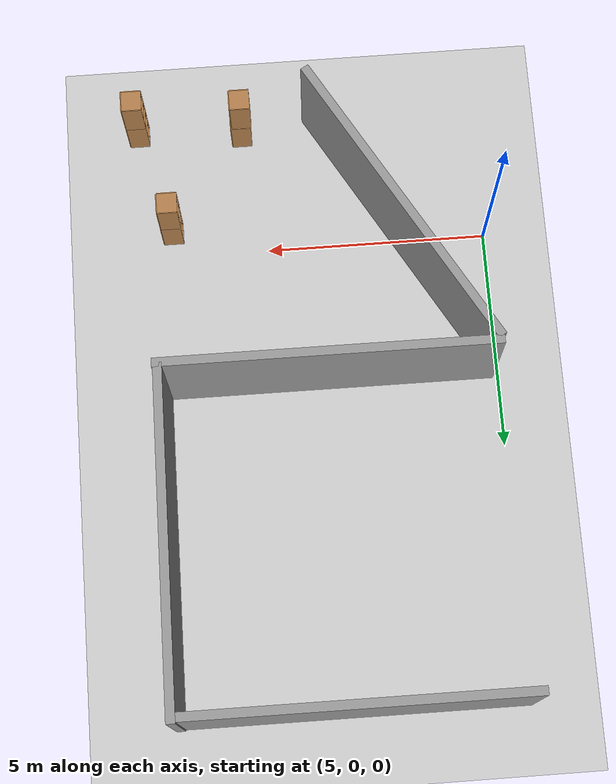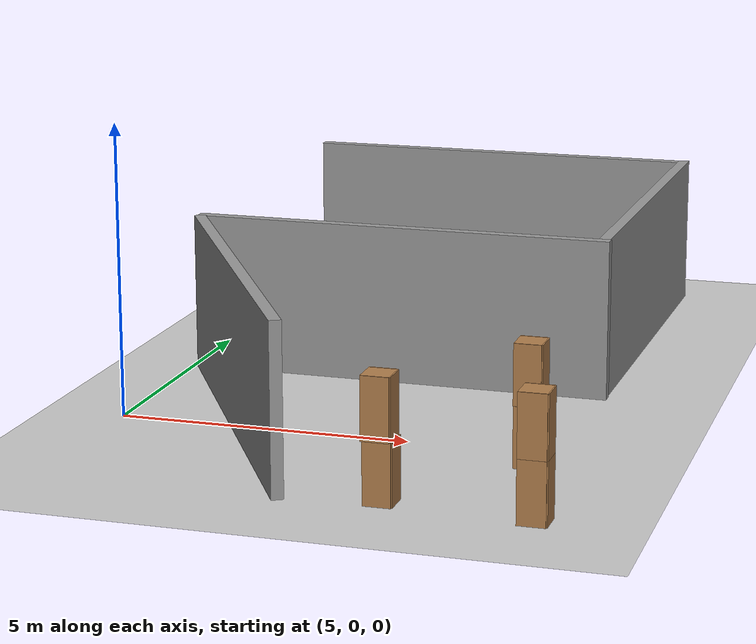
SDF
<sdf version="1.6">
 <world name="default">
  <light name="sun" type="directional">
   <cast_shadows>0</cast_shadows>
   <pose>0 0 10 0 -0 0</pose>
   <diffuse>0.8 0.8 0.8 1</diffuse>
   <specular>0.2 0.2 0.2 1</specular>
   <attenuation>
    <range>1000</range>
    <constant>0.9</constant>
    <linear>0.01</linear>
    <quadratic>0.001</quadratic>
   </attenuation>
   <direction>-0.5 0.1 -0.9</direction>
  </light>
  <model name="ground_plane">
   <static>1</static>
   <link name="link">
    <collision name="collision">
     <geometry><plane><normal>0 0 1</normal><size>200 200</size></plane></geometry>
     <surface><friction><ode><mu>100</mu><mu2>50</mu2></ode></friction></surface>
    </collision>
    <visual name="visual">
     <cast_shadows>0</cast_shadows>
     <geometry><plane><normal>0 0 1</normal><size>200 200</size></plane></geometry>
     <material>
      <script><uri>file://media/materials/scripts/gazebo.material</uri><name>Gazebo/Grey</name></script>
     </material>
    </visual>
   </link>
  </model>
  <physics name="default_physics" default="0" type="ode">
   <max_step_size>0.001</max_step_size>
   <real_time_factor>1</real_time_factor>
   <real_time_update_rate>1000</real_time_update_rate>
  </physics>
  <scene><ambient>0.4 0.4 0.4 1</ambient><background>0.7 0.7 0.7 1</background><shadows>0</shadows></scene>
  <spherical_coordinates>
   <surface_model>EARTH_WGS84</surface_model>
   <latitude_deg>0</latitude_deg>
   <longitude_deg>0</longitude_deg>
   <elevation>0</elevation>
   <heading_deg>0</heading_deg>
  </spherical_coordinates>
  <gravity>0 0 -9.8</gravity>
  <magnetic_field>6e-06 2.3e-05 -4.2e-05</magnetic_field>
  <atmosphere type="adiabatic"/>
  <model name="grey_wall">
   <static>1</static>
   <link name="link">
    <pose>0 0 1.4 0 -0 0</pose>
    <collision name="collision"><geometry><box><size>7.5 0.2 2.8</size></box></geometry></collision>
    <visual name="visual">
     <cast_shadows>0</cast_shadows>
     <geometry><box><size>7.5 0.2 2.8</size></box></geometry>
     <material>
      <script>
       <uri>model://grey_wall/materials/scripts</uri>
       <uri>model://grey_wall/materials/textures</uri>
       <name>vrc/grey_wall</name>
      </script>
     </material>
    </visual>
   </link>
   <pose>7.03756 -0.007814 0 0 0 -1.04529</pose>
  </model>
  <model name="grey_wall_clone_clone">
   <static>1</static>
   <link name="link">
    <pose>0 0 1.4 0 -0 0</pose>
    <collision name="collision"><geometry><box><size>7.5 0.2 2.8</size></box></geometry></collision>
    <visual name="visual">
     <cast_shadows>0</cast_shadows>
     <geometry><box><size>7.5 0.2 2.8</size></box></geometry>
     <material>
      <script>
       <uri>model://grey_wall/materials/scripts</uri>
       <uri>model://grey_wall/materials/textures</uri>
       <name>vrc/grey_wall</name>
      </script>
     </material>
    </visual>
   </link>
   <pose>8.86687 3.30384 0 0 0 -0.002717</pose>
  </model>
  <model name="grey_wall_clone_clone_clone_0">
   <static>1</static>
   <link name="link">
    <pose>0 0 1.4 0 -0 0</pose>
    <collision name="collision"><geometry><box><size>7.5 0.2 2.8</size></box></geometry></collision>
    <visual name="visual">
     <cast_shadows>0</cast_shadows>
     <geometry><box><size>7.5 0.2 2.8</size></box></geometry>
     <material>
      <script>
       <uri>model://grey_wall/materials/scripts</uri>
       <uri>model://grey_wall/materials/textures</uri>
       <name>vrc/grey_wall</name>
      </script>
     </material>
    </visual>
   </link>
   <pose>12.54 7.03843 0 0 0 -1.58223</pose>
  </model>
  <model name="grey_wall_clone_clone_clone_1">
   <static>1</static>
   <link name="link">
    <pose>0 0 1.4 0 -0 0</pose>
    <collision name="collision"><geometry><box><size>7.5 0.2 2.8</size></box></geometry></collision>
    <visual name="visual">
     <cast_shadows>0</cast_shadows>
     <geometry><box><size>7.5 0.2 2.8</size></box></geometry>
     <material>
      <script>
       <uri>model://grey_wall/materials/scripts</uri>
       <uri>model://grey_wall/materials/textures</uri>
       <name>vrc/grey_wall</name>
      </script>
     </material>
    </visual>
   </link>
   <pose>8.7532 10.6719 0 0 0 -0.002717</pose>
  </model>
  <model name="cabinet">
   <static>1</static>
   <link name="cabinet_bottom_plate">
    <inertial>
     <pose>0 0 -1 0 -0 0</pose>
     <inertia><ixx>2.05</ixx><ixy>0</ixy><ixz>0</ixz><iyy>2.05</iyy><iyz>0</iyz><izz>2.05</izz></inertia>
     <mass>25</mass>
    </inertial>
    <collision name="cabinet_bottom_plate_geom">
     <pose>0 0 0.01 0 -0 0</pose>
     <geometry><box><size>0.45 0.45 0.02</size></box></geometry>
    </collision>
    <visual name="cabinet_bottom_plate_geom_visual">
     <pose>0 0 0.01 0 -0 0</pose>
     <geometry><box><size>0.45 0.45 0.02</size></box></geometry>
     <material>
      <script><uri>file://media/materials/scripts/gazebo.material</uri><name>Gazebo/Wood</name></script>
     </material>
    </visual>
    <collision name="cabinet_bottom_plate_geom_cabinet_back_plate">
     <pose>0.235 0 0.51 0 -0 0</pose>
     <geometry><box><size>0.02 0.45 1.02</size></box></geometry>
    </collision>
    <visual name="cabinet_bottom_plate_geom_cabinet_back_plate_visual">
     <pose>0.235 0 0.51 0 -0 0</pose>
     <geometry><box><size>0.02 0.45 1.02</size></box></geometry>
     <material>
      <script><uri>file://media/materials/scripts/gazebo.material</uri><name>Gazebo/Wood</name></script>
     </material>
    </visual>
    <collision name="cabinet_bottom_plate_geom_cabinet_left_plate">
     <pose>0 0.235 0.51 0 -0 0</pose>
     <geometry><box><size>0.45 0.02 1.02</size></box></geometry>
    </collision>
    <visual name="cabinet_bottom_plate_geom_cabinet_left_plate_visual">
     <pose>0 0.235 0.51 0 -0 0</pose>
     <geometry><box><size>0.45 0.02 1.02</size></box></geometry>
     <material>
      <script><uri>file://media/materials/scripts/gazebo.material</uri><name>Gazebo/Wood</name></script>
     </material>
    </visual>
    <collision name="cabinet_bottom_plate_geom_cabinet_middle_plate">
     <pose>0 0 0.51 0 -0 0</pose>
     <geometry><box><size>0.45 0.45 0.02</size></box></geometry>
    </collision>
    <visual name="cabinet_bottom_plate_geom_cabinet_middle_plate_visual">
     <pose>0 0 0.51 0 -0 0</pose>
     <geometry><box><size>0.45 0.45 0.02</size></box></geometry>
     <material>
      <script><uri>file://media/materials/scripts/gazebo.material</uri><name>Gazebo/Wood</name></script>
     </material>
    </visual>
    <collision name="cabinet_bottom_plate_geom_cabinet_right_plate">
     <pose>0 -0.235 0.51 0 -0 0</pose>
     <geometry><box><size>0.45 0.02 1.02</size></box></geometry>
    </collision>
    <visual name="cabinet_bottom_plate_geom_cabinet_right_plate_visual">
     <pose>0 -0.235 0.51 0 -0 0</pose>
     <geometry><box><size>0.45 0.02 1.02</size></box></geometry>
     <material>
      <script><uri>file://media/materials/scripts/gazebo.material</uri><name>Gazebo/Wood</name></script>
     </material>
    </visual>
    <collision name="cabinet_bottom_plate_geom_cabinet_top_plate">
     <pose>0 0 1.01 0 -0 0</pose>
     <geometry><box><size>0.45 0.45 0.02</size></box></geometry>
    </collision>
    <visual name="cabinet_bottom_plate_geom_cabinet_top_plate_visual">
     <pose>0 0 1.01 0 -0 0</pose>
     <geometry><box><size>0.45 0.45 0.02</size></box></geometry>
     <material>
      <script><uri>file://media/materials/scripts/gazebo.material</uri><name>Gazebo/Wood</name></script>
     </material>
    </visual>
   </link>
   <pose>10.4431 -2.90484 0 0 -0 0</pose>
  </model>
  <model name="cabinet_clone">
   <static>1</static>
   <link name="cabinet_bottom_plate">
    <inertial>
     <pose>0 0 -1 0 -0 0</pose>
     <inertia><ixx>2.05</ixx><ixy>0</ixy><ixz>0</ixz><iyy>2.05</iyy><iyz>0</iyz><izz>2.05</izz></inertia>
     <mass>25</mass>
    </inertial>
    <collision name="cabinet_bottom_plate_geom">
     <pose>0 0 0.01 0 -0 0</pose>
     <geometry><box><size>0.45 0.45 0.02</size></box></geometry>
    </collision>
    <visual name="cabinet_bottom_plate_geom_visual">
     <pose>0 0 0.01 0 -0 0</pose>
     <geometry><box><size>0.45 0.45 0.02</size></box></geometry>
     <material>
      <script><uri>file://media/materials/scripts/gazebo.material</uri><name>Gazebo/Wood</name></script>
     </material>
    </visual>
    <collision name="cabinet_bottom_plate_geom_cabinet_back_plate">
     <pose>0.235 0 0.51 0 -0 0</pose>
     <geometry><box><size>0.02 0.45 1.02</size></box></geometry>
    </collision>
    <visual name="cabinet_bottom_plate_geom_cabinet_back_plate_visual">
     <pose>0.235 0 0.51 0 -0 0</pose>
     <geometry><box><size>0.02 0.45 1.02</size></box></geometry>
     <material>
      <script><uri>file://media/materials/scripts/gazebo.material</uri><name>Gazebo/Wood</name></script>
     </material>
    </visual>
    <collision name="cabinet_bottom_plate_geom_cabinet_left_plate">
     <pose>0 0.235 0.51 0 -0 0</pose>
     <geometry><box><size>0.45 0.02 1.02</size></box></geometry>
    </collision>
    <visual name="cabinet_bottom_plate_geom_cabinet_left_plate_visual">
     <pose>0 0.235 0.51 0 -0 0</pose>
     <geometry><box><size>0.45 0.02 1.02</size></box></geometry>
     <material>
      <script><uri>file://media/materials/scripts/gazebo.material</uri><name>Gazebo/Wood</name></script>
     </material>
    </visual>
    <collision name="cabinet_bottom_plate_geom_cabinet_middle_plate">
     <pose>0 0 0.51 0 -0 0</pose>
     <geometry><box><size>0.45 0.45 0.02</size></box></geometry>
    </collision>
    <visual name="cabinet_bottom_plate_geom_cabinet_middle_plate_visual">
     <pose>0 0 0.51 0 -0 0</pose>
     <geometry><box><size>0.45 0.45 0.02</size></box></geometry>
     <material>
      <script><uri>file://media/materials/scripts/gazebo.material</uri><name>Gazebo/Wood</name></script>
     </material>
    </visual>
    <collision name="cabinet_bottom_plate_geom_cabinet_right_plate">
     <pose>0 -0.235 0.51 0 -0 0</pose>
     <geometry><box><size>0.45 0.02 1.02</size></box></geometry>
    </collision>
    <visual name="cabinet_bottom_plate_geom_cabinet_right_plate_visual">
     <pose>0 -0.235 0.51 0 -0 0</pose>
     <geometry><box><size>0.45 0.02 1.02</size></box></geometry>
     <material>
      <script><uri>file://media/materials/scripts/gazebo.material</uri><name>Gazebo/Wood</name></script>
     </material>
    </visual>
    <collision name="cabinet_bottom_plate_geom_cabinet_top_plate">
     <pose>0 0 1.01 0 -0 0</pose>
     <geometry><box><size>0.45 0.45 0.02</size></box></geometry>
    </collision>
    <visual name="cabinet_bottom_plate_geom_cabinet_top_plate_visual">
     <pose>0 0 1.01 0 -0 0</pose>
     <geometry><box><size>0.45 0.45 0.02</size></box></geometry>
     <material>
      <script><uri>file://media/materials/scripts/gazebo.material</uri><name>Gazebo/Wood</name></script>
     </material>
    </visual>
   </link>
   <pose>10.4224 -2.92463 1.01626 0 -0 0</pose>
  </model>
  <model name="cabinet_clone_0">
   <static>1</static>
   <link name="cabinet_bottom_plate">
    <inertial>
     <pose>0 0 -1 0 -0 0</pose>
     <inertia><ixx>2.05</ixx><ixy>0</ixy><ixz>0</ixz><iyy>2.05</iyy><iyz>0</iyz><izz>2.05</izz></inertia>
     <mass>25</mass>
    </inertial>
    <collision name="cabinet_bottom_plate_geom">
     <pose>0 0 0.01 0 -0 0</pose>
     <geometry><box><size>0.45 0.45 0.02</size></box></geometry>
    </collision>
    <visual name="cabinet_bottom_plate_geom_visual">
     <pose>0 0 0.01 0 -0 0</pose>
     <geometry><box><size>0.45 0.45 0.02</size></box></geometry>
     <material>
      <script><uri>file://media/materials/scripts/gazebo.material</uri><name>Gazebo/Wood</name></script>
     </material>
    </visual>
    <collision name="cabinet_bottom_plate_geom_cabinet_back_plate">
     <pose>0.235 0 0.51 0 -0 0</pose>
     <geometry><box><size>0.02 0.45 1.02</size></box></geometry>
    </collision>
    <visual name="cabinet_bottom_plate_geom_cabinet_back_plate_visual">
     <pose>0.235 0 0.51 0 -0 0</pose>
     <geometry><box><size>0.02 0.45 1.02</size></box></geometry>
     <material>
      <script><uri>file://media/materials/scripts/gazebo.material</uri><name>Gazebo/Wood</name></script>
     </material>
    </visual>
    <collision name="cabinet_bottom_plate_geom_cabinet_left_plate">
     <pose>0 0.235 0.51 0 -0 0</pose>
     <geometry><box><size>0.45 0.02 1.02</size></box></geometry>
    </collision>
    <visual name="cabinet_bottom_plate_geom_cabinet_left_plate_visual">
     <pose>0 0.235 0.51 0 -0 0</pose>
     <geometry><box><size>0.45 0.02 1.02</size></box></geometry>
     <material>
      <script><uri>file://media/materials/scripts/gazebo.material</uri><name>Gazebo/Wood</name></script>
     </material>
    </visual>
    <collision name="cabinet_bottom_plate_geom_cabinet_middle_plate">
     <pose>0 0 0.51 0 -0 0</pose>
     <geometry><box><size>0.45 0.45 0.02</size></box></geometry>
    </collision>
    <visual name="cabinet_bottom_plate_geom_cabinet_middle_plate_visual">
     <pose>0 0 0.51 0 -0 0</pose>
     <geometry><box><size>0.45 0.45 0.02</size></box></geometry>
     <material>
      <script><uri>file://media/materials/scripts/gazebo.material</uri><name>Gazebo/Wood</name></script>
     </material>
    </visual>
    <collision name="cabinet_bottom_plate_geom_cabinet_right_plate">
     <pose>0 -0.235 0.51 0 -0 0</pose>
     <geometry><box><size>0.45 0.02 1.02</size></box></geometry>
    </collision>
    <visual name="cabinet_bottom_plate_geom_cabinet_right_plate_visual">
     <pose>0 -0.235 0.51 0 -0 0</pose>
     <geometry><box><size>0.45 0.02 1.02</size></box></geometry>
     <material>
      <script><uri>file://media/materials/scripts/gazebo.material</uri><name>Gazebo/Wood</name></script>
     </material>
    </visual>
    <collision name="cabinet_bottom_plate_geom_cabinet_top_plate">
     <pose>0 0 1.01 0 -0 0</pose>
     <geometry><box><size>0.45 0.45 0.02</size></box></geometry>
    </collision>
    <visual name="cabinet_bottom_plate_geom_cabinet_top_plate_visual">
     <pose>0 0 1.01 0 -0 0</pose>
     <geometry><box><size>0.45 0.45 0.02</size></box></geometry>
     <material>
      <script><uri>file://media/materials/scripts/gazebo.material</uri><name>Gazebo/Wood</name></script>
     </material>
    </visual>
   </link>
   <pose>12.8485 -3.07064 0 0 -0 0</pose>
  </model>
  <model name="cabinet_clone_clone">
   <static>1</static>
   <link name="cabinet_bottom_plate">
    <inertial>
     <pose>0 0 -1 0 -0 0</pose>
     <inertia><ixx>2.05</ixx><ixy>0</ixy><ixz>0</ixz><iyy>2.05</iyy><iyz>0</iyz><izz>2.05</izz></inertia>
     <mass>25</mass>
    </inertial>
    <collision name="cabinet_bottom_plate_geom">
     <pose>0 0 0.01 0 -0 0</pose>
     <geometry><box><size>0.45 0.45 0.02</size></box></geometry>
    </collision>
    <visual name="cabinet_bottom_plate_geom_visual">
     <pose>0 0 0.01 0 -0 0</pose>
     <geometry><box><size>0.45 0.45 0.02</size></box></geometry>
     <material>
      <script><uri>file://media/materials/scripts/gazebo.material</uri><name>Gazebo/Wood</name></script>
     </material>
    </visual>
    <collision name="cabinet_bottom_plate_geom_cabinet_back_plate">
     <pose>0.235 0 0.51 0 -0 0</pose>
     <geometry><box><size>0.02 0.45 1.02</size></box></geometry>
    </collision>
    <visual name="cabinet_bottom_plate_geom_cabinet_back_plate_visual">
     <pose>0.235 0 0.51 0 -0 0</pose>
     <geometry><box><size>0.02 0.45 1.02</size></box></geometry>
     <material>
      <script><uri>file://media/materials/scripts/gazebo.material</uri><name>Gazebo/Wood</name></script>
     </material>
    </visual>
    <collision name="cabinet_bottom_plate_geom_cabinet_left_plate">
     <pose>0 0.235 0.51 0 -0 0</pose>
     <geometry><box><size>0.45 0.02 1.02</size></box></geometry>
    </collision>
    <visual name="cabinet_bottom_plate_geom_cabinet_left_plate_visual">
     <pose>0 0.235 0.51 0 -0 0</pose>
     <geometry><box><size>0.45 0.02 1.02</size></box></geometry>
     <material>
      <script><uri>file://media/materials/scripts/gazebo.material</uri><name>Gazebo/Wood</name></script>
     </material>
    </visual>
    <collision name="cabinet_bottom_plate_geom_cabinet_middle_plate">
     <pose>0 0 0.51 0 -0 0</pose>
     <geometry><box><size>0.45 0.45 0.02</size></box></geometry>
    </collision>
    <visual name="cabinet_bottom_plate_geom_cabinet_middle_plate_visual">
     <pose>0 0 0.51 0 -0 0</pose>
     <geometry><box><size>0.45 0.45 0.02</size></box></geometry>
     <material>
      <script><uri>file://media/materials/scripts/gazebo.material</uri><name>Gazebo/Wood</name></script>
     </material>
    </visual>
    <collision name="cabinet_bottom_plate_geom_cabinet_right_plate">
     <pose>0 -0.235 0.51 0 -0 0</pose>
     <geometry><box><size>0.45 0.02 1.02</size></box></geometry>
    </collision>
    <visual name="cabinet_bottom_plate_geom_cabinet_right_plate_visual">
     <pose>0 -0.235 0.51 0 -0 0</pose>
     <geometry><box><size>0.45 0.02 1.02</size></box></geometry>
     <material>
      <script><uri>file://media/materials/scripts/gazebo.material</uri><name>Gazebo/Wood</name></script>
     </material>
    </visual>
    <collision name="cabinet_bottom_plate_geom_cabinet_top_plate">
     <pose>0 0 1.01 0 -0 0</pose>
     <geometry><box><size>0.45 0.45 0.02</size></box></geometry>
    </collision>
    <visual name="cabinet_bottom_plate_geom_cabinet_top_plate_visual">
     <pose>0 0 1.01 0 -0 0</pose>
     <geometry><box><size>0.45 0.45 0.02</size></box></geometry>
     <material>
      <script><uri>file://media/materials/scripts/gazebo.material</uri><name>Gazebo/Wood</name></script>
     </material>
    </visual>
   </link>
   <pose>12.8489 -3.07004 1.01626 0 -0 0</pose>
  </model>
  <model name="cabinet_clone_clone_clone">
   <static>1</static>
   <link name="cabinet_bottom_plate">
    <inertial>
     <pose>0 0 -1 0 -0 0</pose>
     <inertia><ixx>2.05</ixx><ixy>0</ixy><ixz>0</ixz><iyy>2.05</iyy><iyz>0</iyz><izz>2.05</izz></inertia>
     <mass>25</mass>
    </inertial>
    <collision name="cabinet_bottom_plate_geom">
     <pose>0 0 0.01 0 -0 0</pose>
     <geometry><box><size>0.45 0.45 0.02</size></box></geometry>
    </collision>
    <visual name="cabinet_bottom_plate_geom_visual">
     <pose>0 0 0.01 0 -0 0</pose>
     <geometry><box><size>0.45 0.45 0.02</size></box></geometry>
     <material>
      <script><uri>file://media/materials/scripts/gazebo.material</uri><name>Gazebo/Wood</name></script>
     </material>
    </visual>
    <collision name="cabinet_bottom_plate_geom_cabinet_back_plate">
     <pose>0.235 0 0.51 0 -0 0</pose>
     <geometry><box><size>0.02 0.45 1.02</size></box></geometry>
    </collision>
    <visual name="cabinet_bottom_plate_geom_cabinet_back_plate_visual">
     <pose>0.235 0 0.51 0 -0 0</pose>
     <geometry><box><size>0.02 0.45 1.02</size></box></geometry>
     <material>
      <script><uri>file://media/materials/scripts/gazebo.material</uri><name>Gazebo/Wood</name></script>
     </material>
    </visual>
    <collision name="cabinet_bottom_plate_geom_cabinet_left_plate">
     <pose>0 0.235 0.51 0 -0 0</pose>
     <geometry><box><size>0.45 0.02 1.02</size></box></geometry>
    </collision>
    <visual name="cabinet_bottom_plate_geom_cabinet_left_plate_visual">
     <pose>0 0.235 0.51 0 -0 0</pose>
     <geometry><box><size>0.45 0.02 1.02</size></box></geometry>
     <material>
      <script><uri>file://media/materials/scripts/gazebo.material</uri><name>Gazebo/Wood</name></script>
     </material>
    </visual>
    <collision name="cabinet_bottom_plate_geom_cabinet_middle_plate">
     <pose>0 0 0.51 0 -0 0</pose>
     <geometry><box><size>0.45 0.45 0.02</size></box></geometry>
    </collision>
    <visual name="cabinet_bottom_plate_geom_cabinet_middle_plate_visual">
     <pose>0 0 0.51 0 -0 0</pose>
     <geometry><box><size>0.45 0.45 0.02</size></box></geometry>
     <material>
      <script><uri>file://media/materials/scripts/gazebo.material</uri><name>Gazebo/Wood</name></script>
     </material>
    </visual>
    <collision name="cabinet_bottom_plate_geom_cabinet_right_plate">
     <pose>0 -0.235 0.51 0 -0 0</pose>
     <geometry><box><size>0.45 0.02 1.02</size></box></geometry>
    </collision>
    <visual name="cabinet_bottom_plate_geom_cabinet_right_plate_visual">
     <pose>0 -0.235 0.51 0 -0 0</pose>
     <geometry><box><size>0.45 0.02 1.02</size></box></geometry>
     <material>
      <script><uri>file://media/materials/scripts/gazebo.material</uri><name>Gazebo/Wood</name></script>
     </material>
    </visual>
    <collision name="cabinet_bottom_plate_geom_cabinet_top_plate">
     <pose>0 0 1.01 0 -0 0</pose>
     <geometry><box><size>0.45 0.45 0.02</size></box></geometry>
    </collision>
    <visual name="cabinet_bottom_plate_geom_cabinet_top_plate_visual">
     <pose>0 0 1.01 0 -0 0</pose>
     <geometry><box><size>0.45 0.45 0.02</size></box></geometry>
     <material>
      <script><uri>file://media/materials/scripts/gazebo.material</uri><name>Gazebo/Wood</name></script>
     </material>
    </visual>
   </link>
   <pose>12.1692 -0.567873 1.01626 0 -0 0</pose>
  </model>
  <model name="cabinet_clone_0_clone">
   <static>1</static>
   <link name="cabinet_bottom_plate">
    <inertial>
     <pose>0 0 -1 0 -0 0</pose>
     <inertia><ixx>2.05</ixx><ixy>0</ixy><ixz>0</ixz><iyy>2.05</iyy><iyz>0</iyz><izz>2.05</izz></inertia>
     <mass>25</mass>
    </inertial>
    <collision name="cabinet_bottom_plate_geom">
     <pose>0 0 0.01 0 -0 0</pose>
     <geometry><box><size>0.45 0.45 0.02</size></box></geometry>
    </collision>
    <visual name="cabinet_bottom_plate_geom_visual">
     <pose>0 0 0.01 0 -0 0</pose>
     <geometry><box><size>0.45 0.45 0.02</size></box></geometry>
     <material>
      <script><uri>file://media/materials/scripts/gazebo.material</uri><name>Gazebo/Wood</name></script>
     </material>
    </visual>
    <collision name="cabinet_bottom_plate_geom_cabinet_back_plate">
     <pose>0.235 0 0.51 0 -0 0</pose>
     <geometry><box><size>0.02 0.45 1.02</size></box></geometry>
    </collision>
    <visual name="cabinet_bottom_plate_geom_cabinet_back_plate_visual">
     <pose>0.235 0 0.51 0 -0 0</pose>
     <geometry><box><size>0.02 0.45 1.02</size></box></geometry>
     <material>
      <script><uri>file://media/materials/scripts/gazebo.material</uri><name>Gazebo/Wood</name></script>
     </material>
    </visual>
    <collision name="cabinet_bottom_plate_geom_cabinet_left_plate">
     <pose>0 0.235 0.51 0 -0 0</pose>
     <geometry><box><size>0.45 0.02 1.02</size></box></geometry>
    </collision>
    <visual name="cabinet_bottom_plate_geom_cabinet_left_plate_visual">
     <pose>0 0.235 0.51 0 -0 0</pose>
     <geometry><box><size>0.45 0.02 1.02</size></box></geometry>
     <material>
      <script><uri>file://media/materials/scripts/gazebo.material</uri><name>Gazebo/Wood</name></script>
     </material>
    </visual>
    <collision name="cabinet_bottom_plate_geom_cabinet_middle_plate">
     <pose>0 0 0.51 0 -0 0</pose>
     <geometry><box><size>0.45 0.45 0.02</size></box></geometry>
    </collision>
    <visual name="cabinet_bottom_plate_geom_cabinet_middle_plate_visual">
     <pose>0 0 0.51 0 -0 0</pose>
     <geometry><box><size>0.45 0.45 0.02</size></box></geometry>
     <material>
      <script><uri>file://media/materials/scripts/gazebo.material</uri><name>Gazebo/Wood</name></script>
     </material>
    </visual>
    <collision name="cabinet_bottom_plate_geom_cabinet_right_plate">
     <pose>0 -0.235 0.51 0 -0 0</pose>
     <geometry><box><size>0.45 0.02 1.02</size></box></geometry>
    </collision>
    <visual name="cabinet_bottom_plate_geom_cabinet_right_plate_visual">
     <pose>0 -0.235 0.51 0 -0 0</pose>
     <geometry><box><size>0.45 0.02 1.02</size></box></geometry>
     <material>
      <script><uri>file://media/materials/scripts/gazebo.material</uri><name>Gazebo/Wood</name></script>
     </material>
    </visual>
    <collision name="cabinet_bottom_plate_geom_cabinet_top_plate">
     <pose>0 0 1.01 0 -0 0</pose>
     <geometry><box><size>0.45 0.45 0.02</size></box></geometry>
    </collision>
    <visual name="cabinet_bottom_plate_geom_cabinet_top_plate_visual">
     <pose>0 0 1.01 0 -0 0</pose>
     <geometry><box><size>0.45 0.45 0.02</size></box></geometry>
     <material>
      <script><uri>file://media/materials/scripts/gazebo.material</uri><name>Gazebo/Wood</name></script>
     </material>
    </visual>
   </link>
   <pose>12.1762 -0.572712 0 0 -0 0</pose>
  </model>
 </world>
</sdf>
